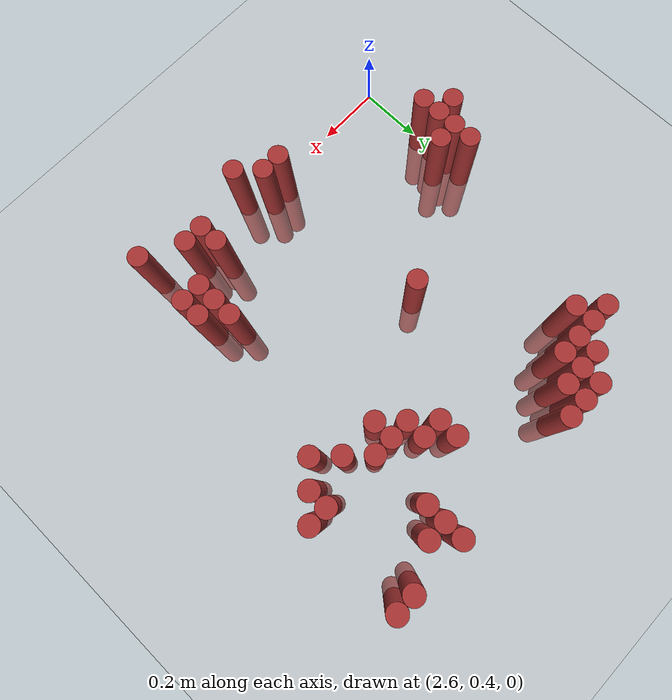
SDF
<sdf version="1.6">
 <world name="default">
  <model name="ground_plane">
   <static>1</static>
   <link name="link">
    <collision name="collision">
     <geometry><plane><normal>0 0 1</normal><size>100 100</size></plane></geometry>
     <surface><friction><ode><mu>100</mu><mu2>50</mu2></ode></friction></surface>
    </collision>
    <visual name="visual">
     <cast_shadows>0</cast_shadows>
     <geometry><plane><normal>0 0 1</normal><size>100 100</size></plane></geometry>
     <material>
      <script><uri>file://media/materials/scripts/gazebo.material</uri><name>Gazebo/Grey</name></script>
     </material>
    </visual>
   </link>
  </model>
  <model name="unit_cylinder_156">
   <static>1</static>
   <pose>2.910000 1.530000 0.000000 0.000000 0.000000 0.000000</pose>
   <link name="link">
    <inertial>
     <mass>1</mass>
     <inertia><ixx>0.145833</ixx><ixy>0</ixy><ixz>0</ixz><iyy>0.145833</iyy><iyz>0</iyz><izz>0.125</izz></inertia>
    </inertial>
    <collision name="collision">
     <geometry><cylinder><radius>0.030000</radius><length>0.5</length></cylinder></geometry>
    </collision>
    <visual name="visual">
     <geometry><cylinder><radius>0.030000</radius><length>0.5</length></cylinder></geometry>
     <material>
      <ambient>0.648000 0.192000 0.192000 1</ambient>
      <diffuse>0.648000 0.192000 0.192000 1</diffuse>
     </material>
     <material>
      <script><name>Gazebo/Grey</name><uri>file://media/materials/scripts/gazebo.material</uri></script>
     </material>
    </visual>
   </link>
  </model>
  <model name="unit_cylinder_157">
   <static>1</static>
   <pose>2.970000 1.530000 0.000000 0.000000 0.000000 0.000000</pose>
   <link name="link">
    <inertial>
     <mass>1</mass>
     <inertia><ixx>0.145833</ixx><ixy>0</ixy><ixz>0</ixz><iyy>0.145833</iyy><iyz>0</iyz><izz>0.125</izz></inertia>
    </inertial>
    <collision name="collision">
     <geometry><cylinder><radius>0.030000</radius><length>0.5</length></cylinder></geometry>
    </collision>
    <visual name="visual">
     <geometry><cylinder><radius>0.030000</radius><length>0.5</length></cylinder></geometry>
     <material>
      <ambient>0.648000 0.192000 0.192000 1</ambient>
      <diffuse>0.648000 0.192000 0.192000 1</diffuse>
     </material>
     <material>
      <script><name>Gazebo/Grey</name><uri>file://media/materials/scripts/gazebo.material</uri></script>
     </material>
    </visual>
   </link>
  </model>
  <model name="unit_cylinder_158">
   <static>1</static>
   <pose>3.030000 1.530000 0.000000 0.000000 0.000000 0.000000</pose>
   <link name="link">
    <inertial>
     <mass>1</mass>
     <inertia><ixx>0.145833</ixx><ixy>0</ixy><ixz>0</ixz><iyy>0.145833</iyy><iyz>0</iyz><izz>0.125</izz></inertia>
    </inertial>
    <collision name="collision">
     <geometry><cylinder><radius>0.030000</radius><length>0.5</length></cylinder></geometry>
    </collision>
    <visual name="visual">
     <geometry><cylinder><radius>0.030000</radius><length>0.5</length></cylinder></geometry>
     <material>
      <ambient>0.648000 0.192000 0.192000 1</ambient>
      <diffuse>0.648000 0.192000 0.192000 1</diffuse>
     </material>
     <material>
      <script><name>Gazebo/Grey</name><uri>file://media/materials/scripts/gazebo.material</uri></script>
     </material>
    </visual>
   </link>
  </model>
  <model name="unit_cylinder_159">
   <static>1</static>
   <pose>3.450000 1.530000 0.000000 0.000000 0.000000 0.000000</pose>
   <link name="link">
    <inertial>
     <mass>1</mass>
     <inertia><ixx>0.145833</ixx><ixy>0</ixy><ixz>0</ixz><iyy>0.145833</iyy><iyz>0</iyz><izz>0.125</izz></inertia>
    </inertial>
    <collision name="collision">
     <geometry><cylinder><radius>0.030000</radius><length>0.5</length></cylinder></geometry>
    </collision>
    <visual name="visual">
     <geometry><cylinder><radius>0.030000</radius><length>0.5</length></cylinder></geometry>
     <material>
      <ambient>0.648000 0.192000 0.192000 1</ambient>
      <diffuse>0.648000 0.192000 0.192000 1</diffuse>
     </material>
     <material>
      <script><name>Gazebo/Grey</name><uri>file://media/materials/scripts/gazebo.material</uri></script>
     </material>
    </visual>
   </link>
  </model>
  <model name="unit_cylinder_160">
   <static>1</static>
   <pose>3.630000 1.530000 0.000000 0.000000 0.000000 0.000000</pose>
   <link name="link">
    <inertial>
     <mass>1</mass>
     <inertia><ixx>0.145833</ixx><ixy>0</ixy><ixz>0</ixz><iyy>0.145833</iyy><iyz>0</iyz><izz>0.125</izz></inertia>
    </inertial>
    <collision name="collision">
     <geometry><cylinder><radius>0.030000</radius><length>0.5</length></cylinder></geometry>
    </collision>
    <visual name="visual">
     <geometry><cylinder><radius>0.030000</radius><length>0.5</length></cylinder></geometry>
     <material>
      <ambient>0.648000 0.192000 0.192000 1</ambient>
      <diffuse>0.648000 0.192000 0.192000 1</diffuse>
     </material>
     <material>
      <script><name>Gazebo/Grey</name><uri>file://media/materials/scripts/gazebo.material</uri></script>
     </material>
    </visual>
   </link>
  </model>
  <model name="unit_cylinder_161">
   <static>1</static>
   <pose>3.690000 1.530000 0.000000 0.000000 0.000000 0.000000</pose>
   <link name="link">
    <inertial>
     <mass>1</mass>
     <inertia><ixx>0.145833</ixx><ixy>0</ixy><ixz>0</ixz><iyy>0.145833</iyy><iyz>0</iyz><izz>0.125</izz></inertia>
    </inertial>
    <collision name="collision">
     <geometry><cylinder><radius>0.030000</radius><length>0.5</length></cylinder></geometry>
    </collision>
    <visual name="visual">
     <geometry><cylinder><radius>0.030000</radius><length>0.5</length></cylinder></geometry>
     <material>
      <ambient>0.648000 0.192000 0.192000 1</ambient>
      <diffuse>0.648000 0.192000 0.192000 1</diffuse>
     </material>
     <material>
      <script><name>Gazebo/Grey</name><uri>file://media/materials/scripts/gazebo.material</uri></script>
     </material>
    </visual>
   </link>
  </model>
  <model name="unit_cylinder_162">
   <static>1</static>
   <pose>2.850000 1.470000 0.000000 0.000000 0.000000 0.000000</pose>
   <link name="link">
    <inertial>
     <mass>1</mass>
     <inertia><ixx>0.145833</ixx><ixy>0</ixy><ixz>0</ixz><iyy>0.145833</iyy><iyz>0</iyz><izz>0.125</izz></inertia>
    </inertial>
    <collision name="collision">
     <geometry><cylinder><radius>0.030000</radius><length>0.5</length></cylinder></geometry>
    </collision>
    <visual name="visual">
     <geometry><cylinder><radius>0.030000</radius><length>0.5</length></cylinder></geometry>
     <material>
      <ambient>0.648000 0.192000 0.192000 1</ambient>
      <diffuse>0.648000 0.192000 0.192000 1</diffuse>
     </material>
     <material>
      <script><name>Gazebo/Grey</name><uri>file://media/materials/scripts/gazebo.material</uri></script>
     </material>
    </visual>
   </link>
  </model>
  <model name="unit_cylinder_163">
   <static>1</static>
   <pose>2.910000 1.470000 0.000000 0.000000 0.000000 0.000000</pose>
   <link name="link">
    <inertial>
     <mass>1</mass>
     <inertia><ixx>0.145833</ixx><ixy>0</ixy><ixz>0</ixz><iyy>0.145833</iyy><iyz>0</iyz><izz>0.125</izz></inertia>
    </inertial>
    <collision name="collision">
     <geometry><cylinder><radius>0.030000</radius><length>0.5</length></cylinder></geometry>
    </collision>
    <visual name="visual">
     <geometry><cylinder><radius>0.030000</radius><length>0.5</length></cylinder></geometry>
     <material>
      <ambient>0.648000 0.192000 0.192000 1</ambient>
      <diffuse>0.648000 0.192000 0.192000 1</diffuse>
     </material>
     <material>
      <script><name>Gazebo/Grey</name><uri>file://media/materials/scripts/gazebo.material</uri></script>
     </material>
    </visual>
   </link>
  </model>
  <model name="unit_cylinder_164">
   <static>1</static>
   <pose>2.970000 1.470000 0.000000 0.000000 0.000000 0.000000</pose>
   <link name="link">
    <inertial>
     <mass>1</mass>
     <inertia><ixx>0.145833</ixx><ixy>0</ixy><ixz>0</ixz><iyy>0.145833</iyy><iyz>0</iyz><izz>0.125</izz></inertia>
    </inertial>
    <collision name="collision">
     <geometry><cylinder><radius>0.030000</radius><length>0.5</length></cylinder></geometry>
    </collision>
    <visual name="visual">
     <geometry><cylinder><radius>0.030000</radius><length>0.5</length></cylinder></geometry>
     <material>
      <ambient>0.648000 0.192000 0.192000 1</ambient>
      <diffuse>0.648000 0.192000 0.192000 1</diffuse>
     </material>
     <material>
      <script><name>Gazebo/Grey</name><uri>file://media/materials/scripts/gazebo.material</uri></script>
     </material>
    </visual>
   </link>
  </model>
  <model name="unit_cylinder_165">
   <static>1</static>
   <pose>3.450000 1.470000 0.000000 0.000000 0.000000 0.000000</pose>
   <link name="link">
    <inertial>
     <mass>1</mass>
     <inertia><ixx>0.145833</ixx><ixy>0</ixy><ixz>0</ixz><iyy>0.145833</iyy><iyz>0</iyz><izz>0.125</izz></inertia>
    </inertial>
    <collision name="collision">
     <geometry><cylinder><radius>0.030000</radius><length>0.5</length></cylinder></geometry>
    </collision>
    <visual name="visual">
     <geometry><cylinder><radius>0.030000</radius><length>0.5</length></cylinder></geometry>
     <material>
      <ambient>0.648000 0.192000 0.192000 1</ambient>
      <diffuse>0.648000 0.192000 0.192000 1</diffuse>
     </material>
     <material>
      <script><name>Gazebo/Grey</name><uri>file://media/materials/scripts/gazebo.material</uri></script>
     </material>
    </visual>
   </link>
  </model>
  <model name="unit_cylinder_166">
   <static>1</static>
   <pose>3.510000 1.470000 0.000000 0.000000 0.000000 0.000000</pose>
   <link name="link">
    <inertial>
     <mass>1</mass>
     <inertia><ixx>0.145833</ixx><ixy>0</ixy><ixz>0</ixz><iyy>0.145833</iyy><iyz>0</iyz><izz>0.125</izz></inertia>
    </inertial>
    <collision name="collision">
     <geometry><cylinder><radius>0.030000</radius><length>0.5</length></cylinder></geometry>
    </collision>
    <visual name="visual">
     <geometry><cylinder><radius>0.030000</radius><length>0.5</length></cylinder></geometry>
     <material>
      <ambient>0.648000 0.192000 0.192000 1</ambient>
      <diffuse>0.648000 0.192000 0.192000 1</diffuse>
     </material>
     <material>
      <script><name>Gazebo/Grey</name><uri>file://media/materials/scripts/gazebo.material</uri></script>
     </material>
    </visual>
   </link>
  </model>
  <model name="unit_cylinder_167">
   <static>1</static>
   <pose>2.730000 1.410000 0.000000 0.000000 0.000000 0.000000</pose>
   <link name="link">
    <inertial>
     <mass>1</mass>
     <inertia><ixx>0.145833</ixx><ixy>0</ixy><ixz>0</ixz><iyy>0.145833</iyy><iyz>0</iyz><izz>0.125</izz></inertia>
    </inertial>
    <collision name="collision">
     <geometry><cylinder><radius>0.030000</radius><length>0.5</length></cylinder></geometry>
    </collision>
    <visual name="visual">
     <geometry><cylinder><radius>0.030000</radius><length>0.5</length></cylinder></geometry>
     <material>
      <ambient>0.648000 0.192000 0.192000 1</ambient>
      <diffuse>0.648000 0.192000 0.192000 1</diffuse>
     </material>
     <material>
      <script><name>Gazebo/Grey</name><uri>file://media/materials/scripts/gazebo.material</uri></script>
     </material>
    </visual>
   </link>
  </model>
  <model name="unit_cylinder_168">
   <static>1</static>
   <pose>2.790000 1.410000 0.000000 0.000000 0.000000 0.000000</pose>
   <link name="link">
    <inertial>
     <mass>1</mass>
     <inertia><ixx>0.145833</ixx><ixy>0</ixy><ixz>0</ixz><iyy>0.145833</iyy><iyz>0</iyz><izz>0.125</izz></inertia>
    </inertial>
    <collision name="collision">
     <geometry><cylinder><radius>0.030000</radius><length>0.5</length></cylinder></geometry>
    </collision>
    <visual name="visual">
     <geometry><cylinder><radius>0.030000</radius><length>0.5</length></cylinder></geometry>
     <material>
      <ambient>0.648000 0.192000 0.192000 1</ambient>
      <diffuse>0.648000 0.192000 0.192000 1</diffuse>
     </material>
     <material>
      <script><name>Gazebo/Grey</name><uri>file://media/materials/scripts/gazebo.material</uri></script>
     </material>
    </visual>
   </link>
  </model>
  <model name="unit_cylinder_169">
   <static>1</static>
   <pose>2.850000 1.410000 0.000000 0.000000 0.000000 0.000000</pose>
   <link name="link">
    <inertial>
     <mass>1</mass>
     <inertia><ixx>0.145833</ixx><ixy>0</ixy><ixz>0</ixz><iyy>0.145833</iyy><iyz>0</iyz><izz>0.125</izz></inertia>
    </inertial>
    <collision name="collision">
     <geometry><cylinder><radius>0.030000</radius><length>0.5</length></cylinder></geometry>
    </collision>
    <visual name="visual">
     <geometry><cylinder><radius>0.030000</radius><length>0.5</length></cylinder></geometry>
     <material>
      <ambient>0.648000 0.192000 0.192000 1</ambient>
      <diffuse>0.648000 0.192000 0.192000 1</diffuse>
     </material>
     <material>
      <script><name>Gazebo/Grey</name><uri>file://media/materials/scripts/gazebo.material</uri></script>
     </material>
    </visual>
   </link>
  </model>
  <model name="unit_cylinder_170">
   <static>1</static>
   <pose>2.910000 1.410000 0.000000 0.000000 0.000000 0.000000</pose>
   <link name="link">
    <inertial>
     <mass>1</mass>
     <inertia><ixx>0.145833</ixx><ixy>0</ixy><ixz>0</ixz><iyy>0.145833</iyy><iyz>0</iyz><izz>0.125</izz></inertia>
    </inertial>
    <collision name="collision">
     <geometry><cylinder><radius>0.030000</radius><length>0.5</length></cylinder></geometry>
    </collision>
    <visual name="visual">
     <geometry><cylinder><radius>0.030000</radius><length>0.5</length></cylinder></geometry>
     <material>
      <ambient>0.648000 0.192000 0.192000 1</ambient>
      <diffuse>0.648000 0.192000 0.192000 1</diffuse>
     </material>
     <material>
      <script><name>Gazebo/Grey</name><uri>file://media/materials/scripts/gazebo.material</uri></script>
     </material>
    </visual>
   </link>
  </model>
  <model name="unit_cylinder_171">
   <static>1</static>
   <pose>3.450000 1.410000 0.000000 0.000000 0.000000 0.000000</pose>
   <link name="link">
    <inertial>
     <mass>1</mass>
     <inertia><ixx>0.145833</ixx><ixy>0</ixy><ixz>0</ixz><iyy>0.145833</iyy><iyz>0</iyz><izz>0.125</izz></inertia>
    </inertial>
    <collision name="collision">
     <geometry><cylinder><radius>0.030000</radius><length>0.5</length></cylinder></geometry>
    </collision>
    <visual name="visual">
     <geometry><cylinder><radius>0.030000</radius><length>0.5</length></cylinder></geometry>
     <material>
      <ambient>0.648000 0.192000 0.192000 1</ambient>
      <diffuse>0.648000 0.192000 0.192000 1</diffuse>
     </material>
     <material>
      <script><name>Gazebo/Grey</name><uri>file://media/materials/scripts/gazebo.material</uri></script>
     </material>
    </visual>
   </link>
  </model>
  <model name="unit_cylinder_172">
   <static>1</static>
   <pose>2.790000 1.350000 0.000000 0.000000 0.000000 0.000000</pose>
   <link name="link">
    <inertial>
     <mass>1</mass>
     <inertia><ixx>0.145833</ixx><ixy>0</ixy><ixz>0</ixz><iyy>0.145833</iyy><iyz>0</iyz><izz>0.125</izz></inertia>
    </inertial>
    <collision name="collision">
     <geometry><cylinder><radius>0.030000</radius><length>0.5</length></cylinder></geometry>
    </collision>
    <visual name="visual">
     <geometry><cylinder><radius>0.030000</radius><length>0.5</length></cylinder></geometry>
     <material>
      <ambient>0.648000 0.192000 0.192000 1</ambient>
      <diffuse>0.648000 0.192000 0.192000 1</diffuse>
     </material>
     <material>
      <script><name>Gazebo/Grey</name><uri>file://media/materials/scripts/gazebo.material</uri></script>
     </material>
    </visual>
   </link>
  </model>
  <model name="unit_cylinder_173">
   <static>1</static>
   <pose>3.270000 1.350000 0.000000 0.000000 0.000000 0.000000</pose>
   <link name="link">
    <inertial>
     <mass>1</mass>
     <inertia><ixx>0.145833</ixx><ixy>0</ixy><ixz>0</ixz><iyy>0.145833</iyy><iyz>0</iyz><izz>0.125</izz></inertia>
    </inertial>
    <collision name="collision">
     <geometry><cylinder><radius>0.030000</radius><length>0.5</length></cylinder></geometry>
    </collision>
    <visual name="visual">
     <geometry><cylinder><radius>0.030000</radius><length>0.5</length></cylinder></geometry>
     <material>
      <ambient>0.648000 0.192000 0.192000 1</ambient>
      <diffuse>0.648000 0.192000 0.192000 1</diffuse>
     </material>
     <material>
      <script><name>Gazebo/Grey</name><uri>file://media/materials/scripts/gazebo.material</uri></script>
     </material>
    </visual>
   </link>
  </model>
  <model name="unit_cylinder_176">
   <static>1</static>
   <pose>3.270000 1.290000 0.000000 0.000000 0.000000 0.000000</pose>
   <link name="link">
    <inertial>
     <mass>1</mass>
     <inertia><ixx>0.145833</ixx><ixy>0</ixy><ixz>0</ixz><iyy>0.145833</iyy><iyz>0</iyz><izz>0.125</izz></inertia>
    </inertial>
    <collision name="collision">
     <geometry><cylinder><radius>0.030000</radius><length>0.5</length></cylinder></geometry>
    </collision>
    <visual name="visual">
     <geometry><cylinder><radius>0.030000</radius><length>0.5</length></cylinder></geometry>
     <material>
      <ambient>0.648000 0.192000 0.192000 1</ambient>
      <diffuse>0.648000 0.192000 0.192000 1</diffuse>
     </material>
     <material>
      <script><name>Gazebo/Grey</name><uri>file://media/materials/scripts/gazebo.material</uri></script>
     </material>
    </visual>
   </link>
  </model>
  <model name="unit_cylinder_177">
   <static>1</static>
   <pose>3.330000 1.290000 0.000000 0.000000 0.000000 0.000000</pose>
   <link name="link">
    <inertial>
     <mass>1</mass>
     <inertia><ixx>0.145833</ixx><ixy>0</ixy><ixz>0</ixz><iyy>0.145833</iyy><iyz>0</iyz><izz>0.125</izz></inertia>
    </inertial>
    <collision name="collision">
     <geometry><cylinder><radius>0.030000</radius><length>0.5</length></cylinder></geometry>
    </collision>
    <visual name="visual">
     <geometry><cylinder><radius>0.030000</radius><length>0.5</length></cylinder></geometry>
     <material>
      <ambient>0.648000 0.192000 0.192000 1</ambient>
      <diffuse>0.648000 0.192000 0.192000 1</diffuse>
     </material>
     <material>
      <script><name>Gazebo/Grey</name><uri>file://media/materials/scripts/gazebo.material</uri></script>
     </material>
    </visual>
   </link>
  </model>
  <model name="unit_cylinder_180">
   <static>1</static>
   <pose>3.330000 1.230000 0.000000 0.000000 0.000000 0.000000</pose>
   <link name="link">
    <inertial>
     <mass>1</mass>
     <inertia><ixx>0.145833</ixx><ixy>0</ixy><ixz>0</ixz><iyy>0.145833</iyy><iyz>0</iyz><izz>0.125</izz></inertia>
    </inertial>
    <collision name="collision">
     <geometry><cylinder><radius>0.030000</radius><length>0.5</length></cylinder></geometry>
    </collision>
    <visual name="visual">
     <geometry><cylinder><radius>0.030000</radius><length>0.5</length></cylinder></geometry>
     <material>
      <ambient>0.648000 0.192000 0.192000 1</ambient>
      <diffuse>0.648000 0.192000 0.192000 1</diffuse>
     </material>
     <material>
      <script><name>Gazebo/Grey</name><uri>file://media/materials/scripts/gazebo.material</uri></script>
     </material>
    </visual>
   </link>
  </model>
  <model name="unit_cylinder_181">
   <static>1</static>
   <pose>3.390000 1.230000 0.000000 0.000000 0.000000 0.000000</pose>
   <link name="link">
    <inertial>
     <mass>1</mass>
     <inertia><ixx>0.145833</ixx><ixy>0</ixy><ixz>0</ixz><iyy>0.145833</iyy><iyz>0</iyz><izz>0.125</izz></inertia>
    </inertial>
    <collision name="collision">
     <geometry><cylinder><radius>0.030000</radius><length>0.5</length></cylinder></geometry>
    </collision>
    <visual name="visual">
     <geometry><cylinder><radius>0.030000</radius><length>0.5</length></cylinder></geometry>
     <material>
      <ambient>0.648000 0.192000 0.192000 1</ambient>
      <diffuse>0.648000 0.192000 0.192000 1</diffuse>
     </material>
     <material>
      <script><name>Gazebo/Grey</name><uri>file://media/materials/scripts/gazebo.material</uri></script>
     </material>
    </visual>
   </link>
  </model>
  <model name="unit_cylinder_182">
   <static>1</static>
   <pose>3.450000 1.230000 0.000000 0.000000 0.000000 0.000000</pose>
   <link name="link">
    <inertial>
     <mass>1</mass>
     <inertia><ixx>0.145833</ixx><ixy>0</ixy><ixz>0</ixz><iyy>0.145833</iyy><iyz>0</iyz><izz>0.125</izz></inertia>
    </inertial>
    <collision name="collision">
     <geometry><cylinder><radius>0.030000</radius><length>0.5</length></cylinder></geometry>
    </collision>
    <visual name="visual">
     <geometry><cylinder><radius>0.030000</radius><length>0.5</length></cylinder></geometry>
     <material>
      <ambient>0.648000 0.192000 0.192000 1</ambient>
      <diffuse>0.648000 0.192000 0.192000 1</diffuse>
     </material>
     <material>
      <script><name>Gazebo/Grey</name><uri>file://media/materials/scripts/gazebo.material</uri></script>
     </material>
    </visual>
   </link>
  </model>
  <model name="unit_cylinder_183">
   <static>1</static>
   <pose>3.630000 1.230000 0.000000 0.000000 0.000000 0.000000</pose>
   <link name="link">
    <inertial>
     <mass>1</mass>
     <inertia><ixx>0.145833</ixx><ixy>0</ixy><ixz>0</ixz><iyy>0.145833</iyy><iyz>0</iyz><izz>0.125</izz></inertia>
    </inertial>
    <collision name="collision">
     <geometry><cylinder><radius>0.030000</radius><length>0.5</length></cylinder></geometry>
    </collision>
    <visual name="visual">
     <geometry><cylinder><radius>0.030000</radius><length>0.5</length></cylinder></geometry>
     <material>
      <ambient>0.648000 0.192000 0.192000 1</ambient>
      <diffuse>0.648000 0.192000 0.192000 1</diffuse>
     </material>
     <material>
      <script><name>Gazebo/Grey</name><uri>file://media/materials/scripts/gazebo.material</uri></script>
     </material>
    </visual>
   </link>
  </model>
  <model name="unit_cylinder_184">
   <static>1</static>
   <pose>3.690000 1.230000 0.000000 0.000000 0.000000 0.000000</pose>
   <link name="link">
    <inertial>
     <mass>1</mass>
     <inertia><ixx>0.145833</ixx><ixy>0</ixy><ixz>0</ixz><iyy>0.145833</iyy><iyz>0</iyz><izz>0.125</izz></inertia>
    </inertial>
    <collision name="collision">
     <geometry><cylinder><radius>0.030000</radius><length>0.5</length></cylinder></geometry>
    </collision>
    <visual name="visual">
     <geometry><cylinder><radius>0.030000</radius><length>0.5</length></cylinder></geometry>
     <material>
      <ambient>0.648000 0.192000 0.192000 1</ambient>
      <diffuse>0.648000 0.192000 0.192000 1</diffuse>
     </material>
     <material>
      <script><name>Gazebo/Grey</name><uri>file://media/materials/scripts/gazebo.material</uri></script>
     </material>
    </visual>
   </link>
  </model>
  <model name="unit_cylinder_187">
   <static>1</static>
   <pose>3.390000 1.170000 0.000000 0.000000 0.000000 0.000000</pose>
   <link name="link">
    <inertial>
     <mass>1</mass>
     <inertia><ixx>0.145833</ixx><ixy>0</ixy><ixz>0</ixz><iyy>0.145833</iyy><iyz>0</iyz><izz>0.125</izz></inertia>
    </inertial>
    <collision name="collision">
     <geometry><cylinder><radius>0.030000</radius><length>0.5</length></cylinder></geometry>
    </collision>
    <visual name="visual">
     <geometry><cylinder><radius>0.030000</radius><length>0.5</length></cylinder></geometry>
     <material>
      <ambient>0.648000 0.192000 0.192000 1</ambient>
      <diffuse>0.648000 0.192000 0.192000 1</diffuse>
     </material>
     <material>
      <script><name>Gazebo/Grey</name><uri>file://media/materials/scripts/gazebo.material</uri></script>
     </material>
    </visual>
   </link>
  </model>
  <model name="unit_cylinder_188">
   <static>1</static>
   <pose>3.510000 1.170000 0.000000 0.000000 0.000000 0.000000</pose>
   <link name="link">
    <inertial>
     <mass>1</mass>
     <inertia><ixx>0.145833</ixx><ixy>0</ixy><ixz>0</ixz><iyy>0.145833</iyy><iyz>0</iyz><izz>0.125</izz></inertia>
    </inertial>
    <collision name="collision">
     <geometry><cylinder><radius>0.030000</radius><length>0.5</length></cylinder></geometry>
    </collision>
    <visual name="visual">
     <geometry><cylinder><radius>0.030000</radius><length>0.5</length></cylinder></geometry>
     <material>
      <ambient>0.648000 0.192000 0.192000 1</ambient>
      <diffuse>0.648000 0.192000 0.192000 1</diffuse>
     </material>
     <material>
      <script><name>Gazebo/Grey</name><uri>file://media/materials/scripts/gazebo.material</uri></script>
     </material>
    </visual>
   </link>
  </model>
  <model name="unit_cylinder_189">
   <static>1</static>
   <pose>3.630000 1.170000 0.000000 0.000000 0.000000 0.000000</pose>
   <link name="link">
    <inertial>
     <mass>1</mass>
     <inertia><ixx>0.145833</ixx><ixy>0</ixy><ixz>0</ixz><iyy>0.145833</iyy><iyz>0</iyz><izz>0.125</izz></inertia>
    </inertial>
    <collision name="collision">
     <geometry><cylinder><radius>0.030000</radius><length>0.5</length></cylinder></geometry>
    </collision>
    <visual name="visual">
     <geometry><cylinder><radius>0.030000</radius><length>0.5</length></cylinder></geometry>
     <material>
      <ambient>0.648000 0.192000 0.192000 1</ambient>
      <diffuse>0.648000 0.192000 0.192000 1</diffuse>
     </material>
     <material>
      <script><name>Gazebo/Grey</name><uri>file://media/materials/scripts/gazebo.material</uri></script>
     </material>
    </visual>
   </link>
  </model>
  <model name="unit_cylinder_193">
   <static>1</static>
   <pose>3.570000 1.110000 0.000000 0.000000 0.000000 0.000000</pose>
   <link name="link">
    <inertial>
     <mass>1</mass>
     <inertia><ixx>0.145833</ixx><ixy>0</ixy><ixz>0</ixz><iyy>0.145833</iyy><iyz>0</iyz><izz>0.125</izz></inertia>
    </inertial>
    <collision name="collision">
     <geometry><cylinder><radius>0.030000</radius><length>0.5</length></cylinder></geometry>
    </collision>
    <visual name="visual">
     <geometry><cylinder><radius>0.030000</radius><length>0.5</length></cylinder></geometry>
     <material>
      <ambient>0.648000 0.192000 0.192000 1</ambient>
      <diffuse>0.648000 0.192000 0.192000 1</diffuse>
     </material>
     <material>
      <script><name>Gazebo/Grey</name><uri>file://media/materials/scripts/gazebo.material</uri></script>
     </material>
    </visual>
   </link>
  </model>
  <model name="unit_cylinder_195">
   <static>1</static>
   <pose>3.030000 0.990000 0.000000 0.000000 0.000000 0.000000</pose>
   <link name="link">
    <inertial>
     <mass>1</mass>
     <inertia><ixx>0.145833</ixx><ixy>0</ixy><ixz>0</ixz><iyy>0.145833</iyy><iyz>0</iyz><izz>0.125</izz></inertia>
    </inertial>
    <collision name="collision">
     <geometry><cylinder><radius>0.030000</radius><length>0.5</length></cylinder></geometry>
    </collision>
    <visual name="visual">
     <geometry><cylinder><radius>0.030000</radius><length>0.5</length></cylinder></geometry>
     <material>
      <ambient>0.648000 0.192000 0.192000 1</ambient>
      <diffuse>0.648000 0.192000 0.192000 1</diffuse>
     </material>
     <material>
      <script><name>Gazebo/Grey</name><uri>file://media/materials/scripts/gazebo.material</uri></script>
     </material>
    </visual>
   </link>
  </model>
  <model name="unit_cylinder_200">
   <static>1</static>
   <pose>2.610000 0.810000 0.000000 0.000000 0.000000 0.000000</pose>
   <link name="link">
    <inertial>
     <mass>1</mass>
     <inertia><ixx>0.145833</ixx><ixy>0</ixy><ixz>0</ixz><iyy>0.145833</iyy><iyz>0</iyz><izz>0.125</izz></inertia>
    </inertial>
    <collision name="collision">
     <geometry><cylinder><radius>0.030000</radius><length>0.5</length></cylinder></geometry>
    </collision>
    <visual name="visual">
     <geometry><cylinder><radius>0.030000</radius><length>0.5</length></cylinder></geometry>
     <material>
      <ambient>0.648000 0.192000 0.192000 1</ambient>
      <diffuse>0.648000 0.192000 0.192000 1</diffuse>
     </material>
     <material>
      <script><name>Gazebo/Grey</name><uri>file://media/materials/scripts/gazebo.material</uri></script>
     </material>
    </visual>
   </link>
  </model>
  <model name="unit_cylinder_204">
   <static>1</static>
   <pose>2.610000 0.750000 0.000000 0.000000 0.000000 0.000000</pose>
   <link name="link">
    <inertial>
     <mass>1</mass>
     <inertia><ixx>0.145833</ixx><ixy>0</ixy><ixz>0</ixz><iyy>0.145833</iyy><iyz>0</iyz><izz>0.125</izz></inertia>
    </inertial>
    <collision name="collision">
     <geometry><cylinder><radius>0.030000</radius><length>0.5</length></cylinder></geometry>
    </collision>
    <visual name="visual">
     <geometry><cylinder><radius>0.030000</radius><length>0.5</length></cylinder></geometry>
     <material>
      <ambient>0.648000 0.192000 0.192000 1</ambient>
      <diffuse>0.648000 0.192000 0.192000 1</diffuse>
     </material>
     <material>
      <script><name>Gazebo/Grey</name><uri>file://media/materials/scripts/gazebo.material</uri></script>
     </material>
    </visual>
   </link>
  </model>
  <model name="unit_cylinder_205">
   <static>1</static>
   <pose>2.670000 0.750000 0.000000 0.000000 0.000000 0.000000</pose>
   <link name="link">
    <inertial>
     <mass>1</mass>
     <inertia><ixx>0.145833</ixx><ixy>0</ixy><ixz>0</ixz><iyy>0.145833</iyy><iyz>0</iyz><izz>0.125</izz></inertia>
    </inertial>
    <collision name="collision">
     <geometry><cylinder><radius>0.030000</radius><length>0.5</length></cylinder></geometry>
    </collision>
    <visual name="visual">
     <geometry><cylinder><radius>0.030000</radius><length>0.5</length></cylinder></geometry>
     <material>
      <ambient>0.648000 0.192000 0.192000 1</ambient>
      <diffuse>0.648000 0.192000 0.192000 1</diffuse>
     </material>
     <material>
      <script><name>Gazebo/Grey</name><uri>file://media/materials/scripts/gazebo.material</uri></script>
     </material>
    </visual>
   </link>
  </model>
  <model name="unit_cylinder_206">
   <static>1</static>
   <pose>2.550000 0.690000 0.000000 0.000000 0.000000 0.000000</pose>
   <link name="link">
    <inertial>
     <mass>1</mass>
     <inertia><ixx>0.145833</ixx><ixy>0</ixy><ixz>0</ixz><iyy>0.145833</iyy><iyz>0</iyz><izz>0.125</izz></inertia>
    </inertial>
    <collision name="collision">
     <geometry><cylinder><radius>0.030000</radius><length>0.5</length></cylinder></geometry>
    </collision>
    <visual name="visual">
     <geometry><cylinder><radius>0.030000</radius><length>0.5</length></cylinder></geometry>
     <material>
      <ambient>0.648000 0.192000 0.192000 1</ambient>
      <diffuse>0.648000 0.192000 0.192000 1</diffuse>
     </material>
     <material>
      <script><name>Gazebo/Grey</name><uri>file://media/materials/scripts/gazebo.material</uri></script>
     </material>
    </visual>
   </link>
  </model>
  <model name="unit_cylinder_207">
   <static>1</static>
   <pose>2.610000 0.690000 0.000000 0.000000 0.000000 0.000000</pose>
   <link name="link">
    <inertial>
     <mass>1</mass>
     <inertia><ixx>0.145833</ixx><ixy>0</ixy><ixz>0</ixz><iyy>0.145833</iyy><iyz>0</iyz><izz>0.125</izz></inertia>
    </inertial>
    <collision name="collision">
     <geometry><cylinder><radius>0.030000</radius><length>0.5</length></cylinder></geometry>
    </collision>
    <visual name="visual">
     <geometry><cylinder><radius>0.030000</radius><length>0.5</length></cylinder></geometry>
     <material>
      <ambient>0.648000 0.192000 0.192000 1</ambient>
      <diffuse>0.648000 0.192000 0.192000 1</diffuse>
     </material>
     <material>
      <script><name>Gazebo/Grey</name><uri>file://media/materials/scripts/gazebo.material</uri></script>
     </material>
    </visual>
   </link>
  </model>
  <model name="unit_cylinder_208">
   <static>1</static>
   <pose>3.450000 0.690000 0.000000 0.000000 0.000000 0.000000</pose>
   <link name="link">
    <inertial>
     <mass>1</mass>
     <inertia><ixx>0.145833</ixx><ixy>0</ixy><ixz>0</ixz><iyy>0.145833</iyy><iyz>0</iyz><izz>0.125</izz></inertia>
    </inertial>
    <collision name="collision">
     <geometry><cylinder><radius>0.030000</radius><length>0.5</length></cylinder></geometry>
    </collision>
    <visual name="visual">
     <geometry><cylinder><radius>0.030000</radius><length>0.5</length></cylinder></geometry>
     <material>
      <ambient>0.648000 0.192000 0.192000 1</ambient>
      <diffuse>0.648000 0.192000 0.192000 1</diffuse>
     </material>
     <material>
      <script><name>Gazebo/Grey</name><uri>file://media/materials/scripts/gazebo.material</uri></script>
     </material>
    </visual>
   </link>
  </model>
  <model name="unit_cylinder_209">
   <static>1</static>
   <pose>2.610000 0.630000 0.000000 0.000000 0.000000 0.000000</pose>
   <link name="link">
    <inertial>
     <mass>1</mass>
     <inertia><ixx>0.145833</ixx><ixy>0</ixy><ixz>0</ixz><iyy>0.145833</iyy><iyz>0</iyz><izz>0.125</izz></inertia>
    </inertial>
    <collision name="collision">
     <geometry><cylinder><radius>0.030000</radius><length>0.5</length></cylinder></geometry>
    </collision>
    <visual name="visual">
     <geometry><cylinder><radius>0.030000</radius><length>0.5</length></cylinder></geometry>
     <material>
      <ambient>0.648000 0.192000 0.192000 1</ambient>
      <diffuse>0.648000 0.192000 0.192000 1</diffuse>
     </material>
     <material>
      <script><name>Gazebo/Grey</name><uri>file://media/materials/scripts/gazebo.material</uri></script>
     </material>
    </visual>
   </link>
  </model>
  <model name="unit_cylinder_210">
   <static>1</static>
   <pose>3.450000 0.630000 0.000000 0.000000 0.000000 0.000000</pose>
   <link name="link">
    <inertial>
     <mass>1</mass>
     <inertia><ixx>0.145833</ixx><ixy>0</ixy><ixz>0</ixz><iyy>0.145833</iyy><iyz>0</iyz><izz>0.125</izz></inertia>
    </inertial>
    <collision name="collision">
     <geometry><cylinder><radius>0.030000</radius><length>0.5</length></cylinder></geometry>
    </collision>
    <visual name="visual">
     <geometry><cylinder><radius>0.030000</radius><length>0.5</length></cylinder></geometry>
     <material>
      <ambient>0.648000 0.192000 0.192000 1</ambient>
      <diffuse>0.648000 0.192000 0.192000 1</diffuse>
     </material>
     <material>
      <script><name>Gazebo/Grey</name><uri>file://media/materials/scripts/gazebo.material</uri></script>
     </material>
    </visual>
   </link>
  </model>
  <model name="unit_cylinder_211">
   <static>1</static>
   <pose>3.510000 0.630000 0.000000 0.000000 0.000000 0.000000</pose>
   <link name="link">
    <inertial>
     <mass>1</mass>
     <inertia><ixx>0.145833</ixx><ixy>0</ixy><ixz>0</ixz><iyy>0.145833</iyy><iyz>0</iyz><izz>0.125</izz></inertia>
    </inertial>
    <collision name="collision">
     <geometry><cylinder><radius>0.030000</radius><length>0.5</length></cylinder></geometry>
    </collision>
    <visual name="visual">
     <geometry><cylinder><radius>0.030000</radius><length>0.5</length></cylinder></geometry>
     <material>
      <ambient>0.648000 0.192000 0.192000 1</ambient>
      <diffuse>0.648000 0.192000 0.192000 1</diffuse>
     </material>
     <material>
      <script><name>Gazebo/Grey</name><uri>file://media/materials/scripts/gazebo.material</uri></script>
     </material>
    </visual>
   </link>
  </model>
  <model name="unit_cylinder_214">
   <static>1</static>
   <pose>3.450000 0.570000 0.000000 0.000000 0.000000 0.000000</pose>
   <link name="link">
    <inertial>
     <mass>1</mass>
     <inertia><ixx>0.145833</ixx><ixy>0</ixy><ixz>0</ixz><iyy>0.145833</iyy><iyz>0</iyz><izz>0.125</izz></inertia>
    </inertial>
    <collision name="collision">
     <geometry><cylinder><radius>0.030000</radius><length>0.5</length></cylinder></geometry>
    </collision>
    <visual name="visual">
     <geometry><cylinder><radius>0.030000</radius><length>0.5</length></cylinder></geometry>
     <material>
      <ambient>0.648000 0.192000 0.192000 1</ambient>
      <diffuse>0.648000 0.192000 0.192000 1</diffuse>
     </material>
     <material>
      <script><name>Gazebo/Grey</name><uri>file://media/materials/scripts/gazebo.material</uri></script>
     </material>
    </visual>
   </link>
  </model>
  <model name="unit_cylinder_215">
   <static>1</static>
   <pose>3.510000 0.570000 0.000000 0.000000 0.000000 0.000000</pose>
   <link name="link">
    <inertial>
     <mass>1</mass>
     <inertia><ixx>0.145833</ixx><ixy>0</ixy><ixz>0</ixz><iyy>0.145833</iyy><iyz>0</iyz><izz>0.125</izz></inertia>
    </inertial>
    <collision name="collision">
     <geometry><cylinder><radius>0.030000</radius><length>0.5</length></cylinder></geometry>
    </collision>
    <visual name="visual">
     <geometry><cylinder><radius>0.030000</radius><length>0.5</length></cylinder></geometry>
     <material>
      <ambient>0.648000 0.192000 0.192000 1</ambient>
      <diffuse>0.648000 0.192000 0.192000 1</diffuse>
     </material>
     <material>
      <script><name>Gazebo/Grey</name><uri>file://media/materials/scripts/gazebo.material</uri></script>
     </material>
    </visual>
   </link>
  </model>
  <model name="unit_cylinder_220">
   <static>1</static>
   <pose>3.330000 0.510000 0.000000 0.000000 0.000000 0.000000</pose>
   <link name="link">
    <inertial>
     <mass>1</mass>
     <inertia><ixx>0.145833</ixx><ixy>0</ixy><ixz>0</ixz><iyy>0.145833</iyy><iyz>0</iyz><izz>0.125</izz></inertia>
    </inertial>
    <collision name="collision">
     <geometry><cylinder><radius>0.030000</radius><length>0.5</length></cylinder></geometry>
    </collision>
    <visual name="visual">
     <geometry><cylinder><radius>0.030000</radius><length>0.5</length></cylinder></geometry>
     <material>
      <ambient>0.648000 0.192000 0.192000 1</ambient>
      <diffuse>0.648000 0.192000 0.192000 1</diffuse>
     </material>
     <material>
      <script><name>Gazebo/Grey</name><uri>file://media/materials/scripts/gazebo.material</uri></script>
     </material>
    </visual>
   </link>
  </model>
  <model name="unit_cylinder_226">
   <static>1</static>
   <pose>3.030000 0.450000 0.000000 0.000000 0.000000 0.000000</pose>
   <link name="link">
    <inertial>
     <mass>1</mass>
     <inertia><ixx>0.145833</ixx><ixy>0</ixy><ixz>0</ixz><iyy>0.145833</iyy><iyz>0</iyz><izz>0.125</izz></inertia>
    </inertial>
    <collision name="collision">
     <geometry><cylinder><radius>0.030000</radius><length>0.5</length></cylinder></geometry>
    </collision>
    <visual name="visual">
     <geometry><cylinder><radius>0.030000</radius><length>0.5</length></cylinder></geometry>
     <material>
      <ambient>0.648000 0.192000 0.192000 1</ambient>
      <diffuse>0.648000 0.192000 0.192000 1</diffuse>
     </material>
     <material>
      <script><name>Gazebo/Grey</name><uri>file://media/materials/scripts/gazebo.material</uri></script>
     </material>
    </visual>
   </link>
  </model>
  <model name="unit_cylinder_227">
   <static>1</static>
   <pose>3.090000 0.450000 0.000000 0.000000 0.000000 0.000000</pose>
   <link name="link">
    <inertial>
     <mass>1</mass>
     <inertia><ixx>0.145833</ixx><ixy>0</ixy><ixz>0</ixz><iyy>0.145833</iyy><iyz>0</iyz><izz>0.125</izz></inertia>
    </inertial>
    <collision name="collision">
     <geometry><cylinder><radius>0.030000</radius><length>0.5</length></cylinder></geometry>
    </collision>
    <visual name="visual">
     <geometry><cylinder><radius>0.030000</radius><length>0.5</length></cylinder></geometry>
     <material>
      <ambient>0.648000 0.192000 0.192000 1</ambient>
      <diffuse>0.648000 0.192000 0.192000 1</diffuse>
     </material>
     <material>
      <script><name>Gazebo/Grey</name><uri>file://media/materials/scripts/gazebo.material</uri></script>
     </material>
    </visual>
   </link>
  </model>
  <model name="unit_cylinder_228">
   <static>1</static>
   <pose>3.330000 0.450000 0.000000 0.000000 0.000000 0.000000</pose>
   <link name="link">
    <inertial>
     <mass>1</mass>
     <inertia><ixx>0.145833</ixx><ixy>0</ixy><ixz>0</ixz><iyy>0.145833</iyy><iyz>0</iyz><izz>0.125</izz></inertia>
    </inertial>
    <collision name="collision">
     <geometry><cylinder><radius>0.030000</radius><length>0.5</length></cylinder></geometry>
    </collision>
    <visual name="visual">
     <geometry><cylinder><radius>0.030000</radius><length>0.5</length></cylinder></geometry>
     <material>
      <ambient>0.648000 0.192000 0.192000 1</ambient>
      <diffuse>0.648000 0.192000 0.192000 1</diffuse>
     </material>
     <material>
      <script><name>Gazebo/Grey</name><uri>file://media/materials/scripts/gazebo.material</uri></script>
     </material>
    </visual>
   </link>
  </model>
  <model name="unit_cylinder_229">
   <static>1</static>
   <pose>3.390000 0.450000 0.000000 0.000000 0.000000 0.000000</pose>
   <link name="link">
    <inertial>
     <mass>1</mass>
     <inertia><ixx>0.145833</ixx><ixy>0</ixy><ixz>0</ixz><iyy>0.145833</iyy><iyz>0</iyz><izz>0.125</izz></inertia>
    </inertial>
    <collision name="collision">
     <geometry><cylinder><radius>0.030000</radius><length>0.5</length></cylinder></geometry>
    </collision>
    <visual name="visual">
     <geometry><cylinder><radius>0.030000</radius><length>0.5</length></cylinder></geometry>
     <material>
      <ambient>0.648000 0.192000 0.192000 1</ambient>
      <diffuse>0.648000 0.192000 0.192000 1</diffuse>
     </material>
     <material>
      <script><name>Gazebo/Grey</name><uri>file://media/materials/scripts/gazebo.material</uri></script>
     </material>
    </visual>
   </link>
  </model>
  <model name="unit_cylinder_232">
   <static>1</static>
   <pose>3.150000 0.390000 0.000000 0.000000 0.000000 0.000000</pose>
   <link name="link">
    <inertial>
     <mass>1</mass>
     <inertia><ixx>0.145833</ixx><ixy>0</ixy><ixz>0</ixz><iyy>0.145833</iyy><iyz>0</iyz><izz>0.125</izz></inertia>
    </inertial>
    <collision name="collision">
     <geometry><cylinder><radius>0.030000</radius><length>0.5</length></cylinder></geometry>
    </collision>
    <visual name="visual">
     <geometry><cylinder><radius>0.030000</radius><length>0.5</length></cylinder></geometry>
     <material>
      <ambient>0.648000 0.192000 0.192000 1</ambient>
      <diffuse>0.648000 0.192000 0.192000 1</diffuse>
     </material>
     <material>
      <script><name>Gazebo/Grey</name><uri>file://media/materials/scripts/gazebo.material</uri></script>
     </material>
    </visual>
   </link>
  </model>
  <model name="unit_cylinder_233">
   <static>1</static>
   <pose>3.510000 0.390000 0.000000 0.000000 0.000000 0.000000</pose>
   <link name="link">
    <inertial>
     <mass>1</mass>
     <inertia><ixx>0.145833</ixx><ixy>0</ixy><ixz>0</ixz><iyy>0.145833</iyy><iyz>0</iyz><izz>0.125</izz></inertia>
    </inertial>
    <collision name="collision">
     <geometry><cylinder><radius>0.030000</radius><length>0.5</length></cylinder></geometry>
    </collision>
    <visual name="visual">
     <geometry><cylinder><radius>0.030000</radius><length>0.5</length></cylinder></geometry>
     <material>
      <ambient>0.648000 0.192000 0.192000 1</ambient>
      <diffuse>0.648000 0.192000 0.192000 1</diffuse>
     </material>
     <material>
      <script><name>Gazebo/Grey</name><uri>file://media/materials/scripts/gazebo.material</uri></script>
     </material>
    </visual>
   </link>
  </model>
 </world>
</sdf>
